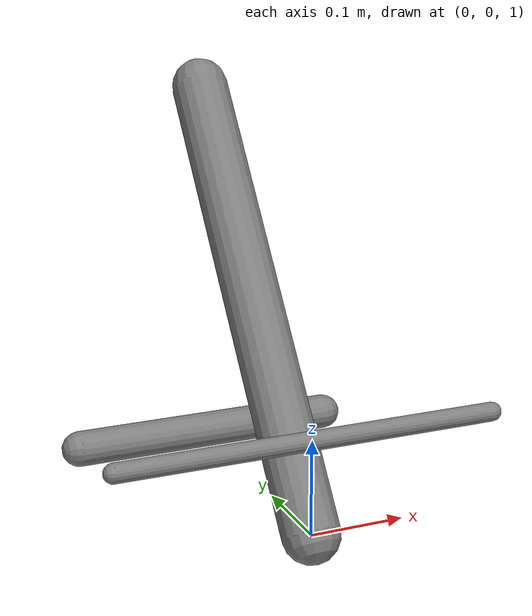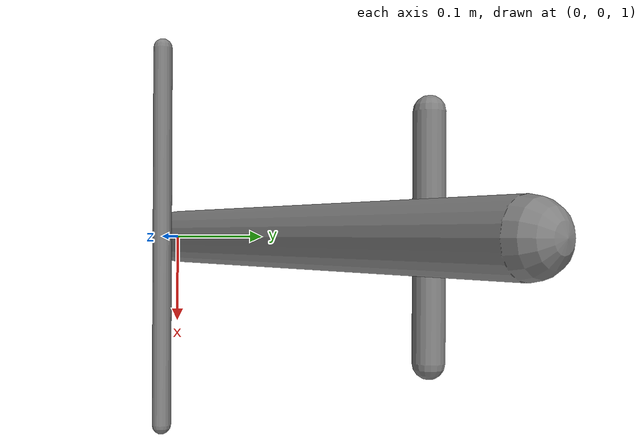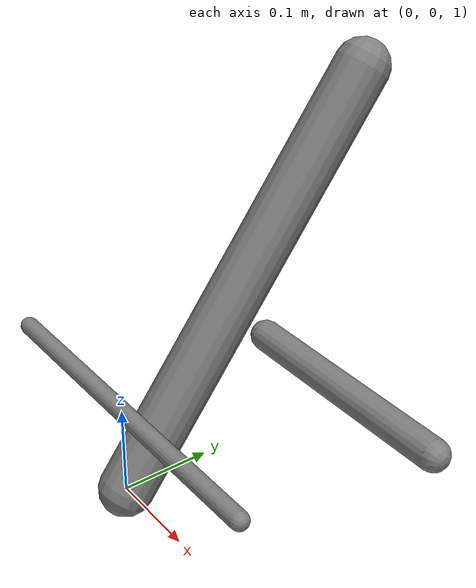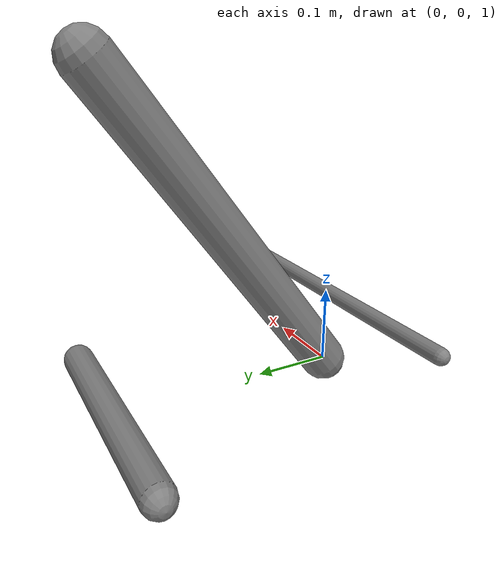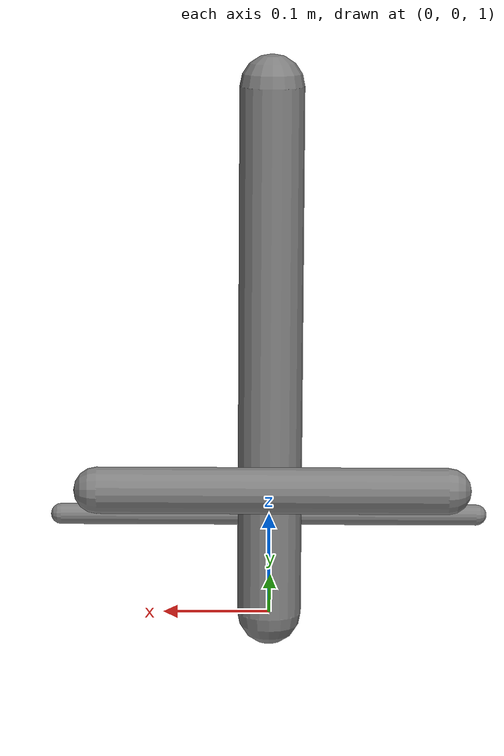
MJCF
<mujoco model="geometry_frames">
  <compiler angle="degree"/>
  <default>
    <geom type="capsule" size="0.02 0.15"/>
    <default class="segment">
      <geom size="0.01" fromto="-0.2 0 0.1 0.2 0 0.1"/>
    </default>
  </default>
  <worldbody>
    <body name="root" pos="0 0 1">
      <freejoint name="root_free"/>
      <inertial mass="1" pos="0 0 0" diaginertia="0.1 0.1 0.1"/>
      <geom name="inherited_segment" class="segment"/>
      <geom name="rotated_segment" pos="0 0.3 0" euler="0 90 0"/>
      <geom name="explicit_segment" class="segment" size="0.03" fromto="0 0 0 0 0.3 0.4"/>
    </body>
  </worldbody>
</mujoco>
